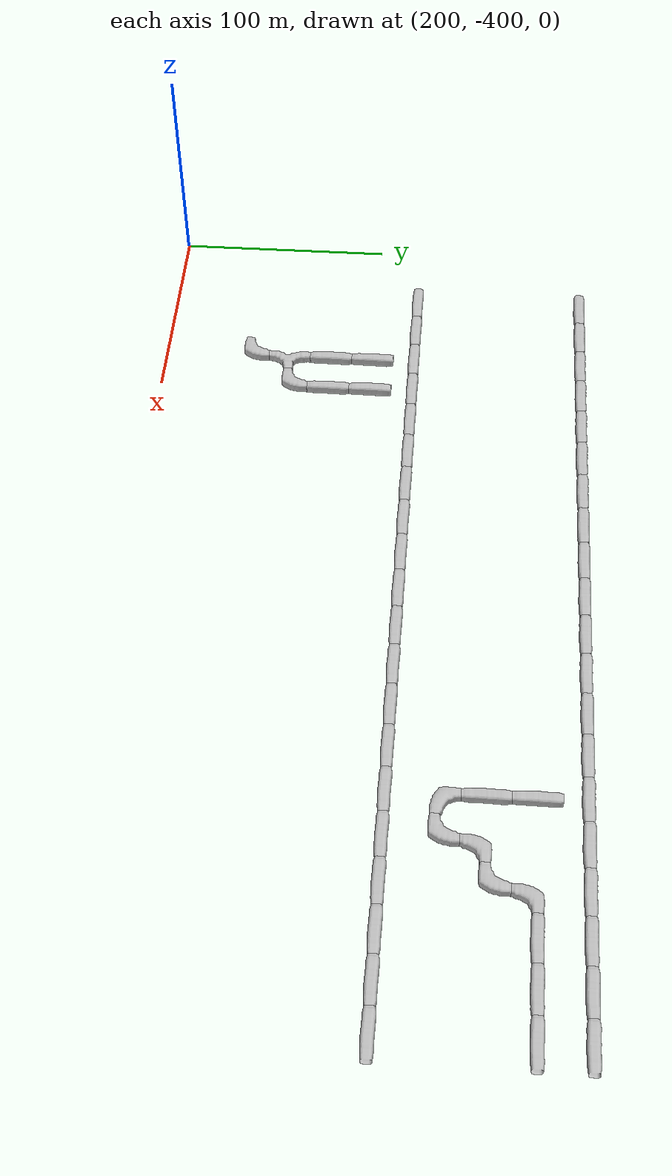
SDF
<sdf version="1.6">
 <world name="cave_32000_64">
  <include>
   <static>true</static>
   <name>cave_12_-10</name>
   <pose>240 -200 0 0 0 1.5707963267948966</pose>
   <uri>model://cave_straight_20m</uri>
  </include>
  <include>
   <static>true</static>
   <name>cave_13_-10</name>
   <pose>260 -200 0 0 0 1.5707963267948966</pose>
   <uri>model://cave_straight_20m</uri>
  </include>
  <include>
   <static>true</static>
   <name>cave_14_-10</name>
   <pose>280 -200 0 0 0 1.5707963267948966</pose>
   <uri>model://cave_straight_20m</uri>
  </include>
  <include>
   <static>true</static>
   <name>cave_15_-10</name>
   <pose>300 -200 0 0 0 1.5707963267948966</pose>
   <uri>model://cave_straight_20m</uri>
  </include>
  <include>
   <static>true</static>
   <name>cave_16_-10</name>
   <pose>320 -200 0 0 0 1.5707963267948966</pose>
   <uri>model://cave_straight_20m</uri>
  </include>
  <include>
   <static>true</static>
   <name>cave_17_-10</name>
   <pose>340 -200 0 0 0 1.5707963267948966</pose>
   <uri>model://cave_straight_20m</uri>
  </include>
  <include>
   <static>true</static>
   <name>cave_18_-10</name>
   <pose>360 -200 0 0 0 1.5707963267948966</pose>
   <uri>model://cave_straight_20m</uri>
  </include>
  <include>
   <static>true</static>
   <name>cave_19_-10</name>
   <pose>380 -200 0 0 0 1.5707963267948966</pose>
   <uri>model://cave_straight_20m</uri>
  </include>
  <include>
   <static>true</static>
   <name>cave_20_-10</name>
   <pose>400 -200 0 0 0 1.5707963267948966</pose>
   <uri>model://cave_straight_20m</uri>
  </include>
  <include>
   <static>true</static>
   <name>cave_21_-10</name>
   <pose>420 -200 0 0 0 1.5707963267948966</pose>
   <uri>model://cave_straight_20m</uri>
  </include>
  <include>
   <static>true</static>
   <name>cave_22_-10</name>
   <pose>440 -200 0 0 0 1.5707963267948966</pose>
   <uri>model://cave_straight_20m</uri>
  </include>
  <include>
   <static>true</static>
   <name>cave_23_-10</name>
   <pose>460 -200 0 0 0 1.5707963267948966</pose>
   <uri>model://cave_straight_20m</uri>
  </include>
  <include>
   <static>true</static>
   <name>cave_24_-10</name>
   <pose>480 -200 0 0 0 1.5707963267948966</pose>
   <uri>model://cave_straight_20m</uri>
  </include>
  <include>
   <static>true</static>
   <name>cave_25_-10</name>
   <pose>500 -200 0 0 0 1.5707963267948966</pose>
   <uri>model://cave_straight_20m</uri>
  </include>
  <include>
   <static>true</static>
   <name>cave_26_-10</name>
   <pose>520 -200 0 0 0 1.5707963267948966</pose>
   <uri>model://cave_straight_20m</uri>
  </include>
  <include>
   <static>true</static>
   <name>cave_27_-10</name>
   <pose>540 -200 0 0 0 1.5707963267948966</pose>
   <uri>model://cave_straight_20m</uri>
  </include>
  <include>
   <static>true</static>
   <name>cave_28_-10</name>
   <pose>560 -200 0 0 0 1.5707963267948966</pose>
   <uri>model://cave_straight_20m</uri>
  </include>
  <include>
   <static>true</static>
   <name>cave_29_-10</name>
   <pose>580 -200 0 0 0 1.5707963267948966</pose>
   <uri>model://cave_straight_20m</uri>
  </include>
  <include>
   <static>true</static>
   <name>cave_30_-10</name>
   <pose>600 -200 0 0 0 1.5707963267948966</pose>
   <uri>model://cave_straight_20m</uri>
  </include>
  <include>
   <static>true</static>
   <name>cave_31_-10</name>
   <pose>620 -200 0 0 0 1.5707963267948966</pose>
   <uri>model://cave_straight_20m</uri>
  </include>
  <include>
   <static>true</static>
   <name>cave_31_-11</name>
   <pose>620 -220 0 0 0 1.5707963267948966</pose>
   <uri>model://cave_straight_20m</uri>
  </include>
  <include>
   <static>true</static>
   <name>cave_30_-11</name>
   <pose>600 -220 0 0 0 1.5707963267948966</pose>
   <uri>model://cave_straight_20m</uri>
  </include>
  <include>
   <static>true</static>
   <name>cave_29_-11</name>
   <pose>580 -220 0 0 0 1.5707963267948966</pose>
   <uri>model://cave_straight_20m</uri>
  </include>
  <include>
   <static>true</static>
   <name>cave_28_-11</name>
   <pose>560 -220 0 0 0 -1.5707963267948966</pose>
   <uri>model://cave_L_20m</uri>
  </include>
  <include>
   <static>true</static>
   <name>cave_28_-12</name>
   <pose>560 -240 0 0 0 1.5707963267948966</pose>
   <uri>model://cave_L_20m</uri>
  </include>
  <include>
   <static>true</static>
   <name>cave_27_-12</name>
   <pose>540 -240 0 0 0 -1.5707963267948966</pose>
   <uri>model://cave_L_20m</uri>
  </include>
  <include>
   <static>true</static>
   <name>cave_27_-13</name>
   <pose>540 -260 0 0 0 1.5707963267948966</pose>
   <uri>model://cave_L_20m</uri>
  </include>
  <include>
   <static>true</static>
   <name>cave_26_-13</name>
   <pose>520 -260 0 0 0 0.0</pose>
   <uri>model://cave_L_20m</uri>
  </include>
  <include>
   <static>true</static>
   <name>cave_26_-12</name>
   <pose>520 -240 0 0 0 0.0</pose>
   <uri>model://cave_straight_20m</uri>
  </include>
  <include>
   <static>true</static>
   <name>cave_26_-11</name>
   <pose>520 -220 0 0 0 0.0</pose>
   <uri>model://cave_straight_20m</uri>
  </include>
  <include>
   <static>true</static>
   <name>cave_14_-18</name>
   <pose>280 -360 0 0 0 1.5707963267948966</pose>
   <uri>model://cave_L_20m</uri>
  </include>
  <include>
   <static>true</static>
   <name>cave_14_-17</name>
   <pose>280 -340 0 0 0 -1.5707963267948966</pose>
   <uri>model://cave_3way_20m</uri>
  </include>
  <include>
   <static>true</static>
   <name>cave_15_-17</name>
   <pose>300 -340 0 0 0 1.5707963267948966</pose>
   <uri>model://cave_L_20m</uri>
  </include>
  <include>
   <static>true</static>
   <name>cave_15_-16</name>
   <pose>300 -320 0 0 0 0.0</pose>
   <uri>model://cave_straight_20m</uri>
  </include>
  <include>
   <static>true</static>
   <name>cave_15_-15</name>
   <pose>300 -300 0 0 0 0.0</pose>
   <uri>model://cave_straight_20m</uri>
  </include>
  <include>
   <static>true</static>
   <name>cave_14_-16</name>
   <pose>280 -320 0 0 0 0.0</pose>
   <uri>model://cave_straight_20m</uri>
  </include>
  <include>
   <static>true</static>
   <name>cave_14_-15</name>
   <pose>280 -300 0 0 0 0.0</pose>
   <uri>model://cave_straight_20m</uri>
  </include>
  <include>
   <static>true</static>
   <name>cave_12_-14</name>
   <pose>240 -280 0 0 0 1.5707963267948966</pose>
   <uri>model://cave_straight_20m</uri>
  </include>
  <include>
   <static>true</static>
   <name>cave_13_-14</name>
   <pose>260 -280 0 0 0 1.5707963267948966</pose>
   <uri>model://cave_straight_20m</uri>
  </include>
  <include>
   <static>true</static>
   <name>cave_14_-14</name>
   <pose>280 -280 0 0 0 1.5707963267948966</pose>
   <uri>model://cave_straight_20m</uri>
  </include>
  <include>
   <static>true</static>
   <name>cave_15_-14</name>
   <pose>300 -280 0 0 0 1.5707963267948966</pose>
   <uri>model://cave_straight_20m</uri>
  </include>
  <include>
   <static>true</static>
   <name>cave_16_-14</name>
   <pose>320 -280 0 0 0 1.5707963267948966</pose>
   <uri>model://cave_straight_20m</uri>
  </include>
  <include>
   <static>true</static>
   <name>cave_17_-14</name>
   <pose>340 -280 0 0 0 1.5707963267948966</pose>
   <uri>model://cave_straight_20m</uri>
  </include>
  <include>
   <static>true</static>
   <name>cave_18_-14</name>
   <pose>360 -280 0 0 0 1.5707963267948966</pose>
   <uri>model://cave_straight_20m</uri>
  </include>
  <include>
   <static>true</static>
   <name>cave_19_-14</name>
   <pose>380 -280 0 0 0 1.5707963267948966</pose>
   <uri>model://cave_straight_20m</uri>
  </include>
  <include>
   <static>true</static>
   <name>cave_20_-14</name>
   <pose>400 -280 0 0 0 1.5707963267948966</pose>
   <uri>model://cave_straight_20m</uri>
  </include>
  <include>
   <static>true</static>
   <name>cave_21_-14</name>
   <pose>420 -280 0 0 0 1.5707963267948966</pose>
   <uri>model://cave_straight_20m</uri>
  </include>
  <include>
   <static>true</static>
   <name>cave_22_-14</name>
   <pose>440 -280 0 0 0 1.5707963267948966</pose>
   <uri>model://cave_straight_20m</uri>
  </include>
  <include>
   <static>true</static>
   <name>cave_23_-14</name>
   <pose>460 -280 0 0 0 1.5707963267948966</pose>
   <uri>model://cave_straight_20m</uri>
  </include>
  <include>
   <static>true</static>
   <name>cave_24_-14</name>
   <pose>480 -280 0 0 0 1.5707963267948966</pose>
   <uri>model://cave_straight_20m</uri>
  </include>
  <include>
   <static>true</static>
   <name>cave_25_-14</name>
   <pose>500 -280 0 0 0 1.5707963267948966</pose>
   <uri>model://cave_straight_20m</uri>
  </include>
  <include>
   <static>true</static>
   <name>cave_26_-14</name>
   <pose>520 -280 0 0 0 1.5707963267948966</pose>
   <uri>model://cave_straight_20m</uri>
  </include>
  <include>
   <static>true</static>
   <name>cave_27_-14</name>
   <pose>540 -280 0 0 0 1.5707963267948966</pose>
   <uri>model://cave_straight_20m</uri>
  </include>
  <include>
   <static>true</static>
   <name>cave_28_-14</name>
   <pose>560 -280 0 0 0 1.5707963267948966</pose>
   <uri>model://cave_straight_20m</uri>
  </include>
  <include>
   <static>true</static>
   <name>cave_29_-14</name>
   <pose>580 -280 0 0 0 1.5707963267948966</pose>
   <uri>model://cave_straight_20m</uri>
  </include>
  <include>
   <static>true</static>
   <name>cave_30_-14</name>
   <pose>600 -280 0 0 0 1.5707963267948966</pose>
   <uri>model://cave_straight_20m</uri>
  </include>
  <include>
   <static>true</static>
   <name>cave_31_-14</name>
   <pose>620 -280 0 0 0 1.5707963267948966</pose>
   <uri>model://cave_straight_20m</uri>
  </include>
 </world>
</sdf>
